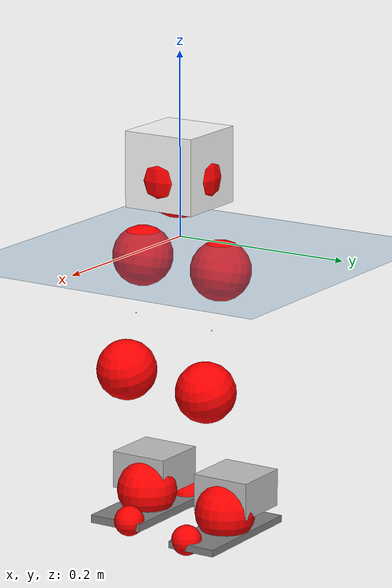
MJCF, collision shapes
<mujoco model="pi_12dof_release_v1">
  <compiler angle="radian" assetdir="assets" balanceinertia="true" inertiafromgeom="false"/>

  <option timestep="0.005" density="1.2" viscosity="2e-05"/>

  <size nkey="1"/>

  <visual>
    <quality shadowsize="8192"/>
    <map shadowclip="0.5"/>
  </visual>

  <default>
    <default class="/">
      <joint armature="0.01" damping="0.01" frictionloss="0.01"/>
      <geom contype="0" conaffinity="0" group="1" solref="-1000 -80"/>
      <site size="0.01 0.005 0.005" group="5"/>
      <general forcelimited="true" biastype="affine" gainprm="20" biasprm="0 -20 -0.5"/>
      <default class="foot">
        <geom size="0.0845 0.036 0.005" type="box" condim="6" group="4" priority="1" friction="0.9 0.2 0.2" solimp="0.015 1 0.005"/>
      </default>
      <default class="reward_collision_sphere">
        <geom group="5" rgba="1 0 0 1"/>
      </default>
    </default>
  </default>

  <asset>
    <texture type="skybox" colorspace="auto" name="//unnamed_texture_0" builtin="gradient" rgb1="0.95 0.95 0.95" rgb2="0.95 0.95 0.95" width="100" height="600"/>
    <texture type="2d" colorspace="auto" name="texplane" builtin="checker" rgb1="0.345 0.575 0.748" rgb2="0.345 0.575 0.748" markrgb="1 1 1" width="512" height="512"/>
    <material name="MatPlane" class="/" texture="texplane" texuniform="true" texrepeat="2 2" specular="0.9"/>
    <mesh name="baselink_1" class="/" file="baselink_1.STL"/>
    <mesh name="r_hip_pitch_link" class="/" file="r_hip_pitch_link.STL"/>
    <mesh name="r_hip_roll_link" class="/" file="r_hip_roll_link.STL"/>
    <mesh name="r_thigh_link" class="/" file="r_thigh_link.STL"/>
    <mesh name="r_calf_link" class="/" file="r_calf_link.STL"/>
    <mesh name="r_ankle_pitch_link" class="/" file="r_ankle_pitch_link.STL"/>
    <mesh name="r_ankle_roll_link" class="/" file="r_ankle_roll_link.STL"/>
    <mesh name="l_hip_pitch_link" class="/" file="l_hip_pitch_link.STL"/>
    <mesh name="l_hip_roll_link" class="/" file="l_hip_roll_link.STL"/>
    <mesh name="l_thigh_link" class="/" file="l_thigh_link.STL"/>
    <mesh name="l_calf_link" class="/" file="l_calf_link.STL"/>
    <mesh name="l_ankle_pitch_link" class="/" file="l_ankle_pitch_link.STL"/>
    <mesh name="l_ankle_roll_link" class="/" file="l_ankle_roll_link.STL"/>
  </asset>

  <worldbody>
    <geom name="floor" class="/" size="100 100 0.125" type="plane" group="0" material="MatPlane"/>
    <light name="toplight_shadow" class="/" pos="0 0 5" dir="0.0990148 0.0990148 -0.990148" type="directional" ambient="0.04 0.04 0.04" diffuse="0.55 0.55 0.55" specular="0.12 0.12 0.12"/>
    <light name="toplight_fill" class="/" pos="0 0 5" dir="0.0990148 0.0990148 -0.990148" type="directional" castshadow="false" ambient="0.04 0.04 0.04" diffuse="0.3 0.3 0.3" specular="0.08 0.08 0.08"/>
    <body name="trunk" pos="0.000886284 -0.000469638 0.00176063" quat="1 0.000399713 3.02249e-05 -0.000254925">
      <inertial pos="0.00395762 -0.000205663 0.0368436" quat="0.693279 0.00811989 0.0100072 0.720554" mass="1.15643" diaginertia="0.00419358 0.00137649 0.00275227"/>
      <joint name="//unnamed_joint_0" type="free"/>
      <geom name="//unnamed_geom_1" class="/" type="mesh" density="0" rgba="1 1 1 1" mesh="baselink_1"/>
      <geom name="//unnamed_geom_2" class="/" size="0.0412085 0.0412085 0.0412085" pos="0 0 0.0742142" type="box" rgba="1 1 1 1"/>
      <geom name="//unnamed_geom_3" class="reward_collision_sphere" size="0.0453293" pos="0 0 0.0649374"/>
      <site name="imu" class="/" pos="0.00900408 0.0108148 -0.00395263" size="0.00824169"/>
      <camera name="track" class="/" pos="0 -1.38833 0" quat="0.707107 0.707107 0 0" mode="trackcom"/>
      <camera name="ego_camera" class="/" pos="0.0638001 0 0.166982" quat="-0.5 -0.5 0.5 0.5"/>
      <body name="r_hip_pitch_link" pos="-0.00170508 -0.0123679 -0.0301863" quat="0.992191 8.22359e-07 -0.124725 -0.000107686">
        <inertial pos="0.0012891 -0.0386915 0.0013051" quat="-0.013758 0.709662 -0.0257624 0.703937" mass="0.200241" diaginertia="4.76943e-05 1.48767e-05 5.56715e-05"/>
        <joint name="r_hip_pitch_joint" class="/" pos="0 0 0" axis="-0.00722611 -0.999974 -7.37698e-05" range="-1.70169 1.19875" armature="0.00796436" damping="0.00772399" frictionloss="0.00883591"/>
        <geom name="//unnamed_geom_4" class="/" type="mesh" density="0" rgba="0.75294 0.75294 0.75294 1" mesh="r_hip_pitch_link"/>
        <geom name="//unnamed_geom_5" class="/" size="0.000412085 0.000412085 0.000412085" type="box" rgba="0.75294 0.75294 0.75294 1"/>
        <body name="r_hip_roll_link" pos="0.000690116 -0.0355914 0.000855761" quat="1 -0.000533438 0.000395713 0.000333864">
          <inertial pos="-0.00151224 -9.23116e-05 -0.0605025" quat="0.700903 -0.0773439 -0.0940369 0.702788" mass="0.223764" diaginertia="0.000152711 4.49987e-05 8.77728e-05"/>
          <joint name="r_hip_roll_joint" class="/" pos="0 0 0" axis="-0.999981 -0.00482459 -0.00381312" range="-0.113187 0.507816" armature="0.00910916" damping="0.000751852" frictionloss="0.00908228"/>
          <geom name="//unnamed_geom_6" class="/" type="mesh" density="0" rgba="0.75294 0.75294 0.75294 1" mesh="r_hip_roll_link"/>
          <geom name="//unnamed_geom_7" class="/" size="0.000412085 0.000412085 0.000412085" type="box" rgba="0.75294 0.75294 0.75294 1"/>
          <geom name="//unnamed_geom_8" class="reward_collision_sphere" size="0.0329668"/>
          <body name="r_thigh_link" pos="-0.00242573 -0.000583288 -0.0622617" quat="1 0.000302964 -0.000373642 -0.000860874">
            <inertial pos="0.0030852 0.0021001 -0.0426326" quat="0.736332 0.676615 -0.00252389 -0.000677279" mass="0.0631288" diaginertia="5.67384e-05 1.54813e-05 4.04587e-05"/>
            <joint name="r_thigh_joint" class="/" pos="0 0 0" axis="-0.000918635 0.00150521 -0.999998" stiffness="0.00471677" range="-0.353228 0.594165" armature="0.00904587" damping="0.0104057" frictionloss="0.0076108"/>
            <geom name="//unnamed_geom_9" class="/" type="mesh" density="0" rgba="0.75294 0.75294 0.75294 1" mesh="r_thigh_link"/>
            <geom name="//unnamed_geom_10" class="/" size="0.000412085 0.000412085 0.000412085" type="box" rgba="0.75294 0.75294 0.75294 1"/>
            <body name="r_calf_link" pos="-0.00169865 -0.00300632 -0.0621836" quat="0.947871 0.000787672 0.318652 9.20914e-06">
              <inertial pos="-0.00350136 -0.000466007 -0.0653046" quat="0.999905 -0.00977309 -0.0065042 0.00718244" mass="0.429903" diaginertia="0.00154798 0.000552024 0.000117604"/>
              <joint name="r_calf_joint" class="/" pos="0 0 0" axis="0.0056432 -0.999878 0.0145435" range="-1.6401 0.695661" armature="0.00812955" damping="3.61462e-05" frictionloss="0.00832138"/>
              <geom name="//unnamed_geom_11" class="/" type="mesh" density="0" rgba="0.75294 0.75294 0.75294 1" mesh="r_calf_link"/>
              <geom name="//unnamed_geom_12" class="/" size="0.000412085 0.000412085 0.000412085" type="box" rgba="0.75294 0.75294 0.75294 1"/>
              <geom name="//unnamed_geom_13" class="reward_collision_sphere" size="0.0329668"/>
              <body name="r_ankle_pitch_link" pos="-0.00144028 -0.00135327 -0.135303" quat="0.979998 -0.00090905 -0.199005 -0.000991041">
                <inertial pos="0.00132734 0.00205731 -0.00314826" quat="-0.00569839 0.703003 0.00562476 0.711141" mass="0.0990118" diaginertia="0.000134966 3.53074e-05 8.45688e-05"/>
                <joint name="r_ankle_pitch_joint" class="/" pos="0 0 0" axis="0.00642459 -0.99996 0.00623753" stiffness="0.00235782" range="-1.34563 0.50753" armature="0.00708274" damping="0" frictionloss="0.00880976"/>
                <geom name="//unnamed_geom_14" class="/" type="mesh" density="0" rgba="0.75294 0.75294 0.75294 1" mesh="r_ankle_pitch_link"/>
                <geom name="//unnamed_geom_15" class="/" size="0.0321426 0.0329668 0.0206042" type="box" rgba="0.75294 0.75294 0.75294 1"/>
                <body name="r_ankle_roll_link" pos="0.0660781 0.00619815 0.000382441" quat="0.999999 0.000594308 0.000530923 0.00064436">
                  <inertial pos="-0.0237293 0.00083388 -0.0130347" quat="0.563799 0.432438 0.423589 0.561873" mass="0.288082" diaginertia="0.000511034 0.000167415 0.000191891"/>
                  <joint name="r_ankle_roll_joint" class="/" pos="0 0 0" axis="-0.999997 -0.000658036 -0.00237794" stiffness="0.0089332" range="-0.100889 0.195217" armature="0.00826704" damping="0" frictionloss="0.00867218"/>
                  <geom name="//unnamed_geom_16" class="/" type="mesh" density="0" rgba="0.75294 0.75294 0.75294 1" mesh="r_ankle_roll_link"/>
                  <geom name="//unnamed_geom_17" class="/" type="mesh" rgba="0.75294 0.75294 0.75294 1" mesh="r_ankle_roll_link"/>
                  <geom name="right_foot" class="foot" size="0.0632488 0.0312258 0.0043344" pos="-0.0433841 0 -0.0408178"/>
                  <geom name="//unnamed_geom_19" class="reward_collision_sphere" size="0.0329668" pos="-0.0425334 0 -0.0185535"/>
                  <geom name="//unnamed_geom_20" class="reward_collision_sphere" size="0.0164834" pos="0.01276 0.0138833 -0.0371071"/>
                  <geom name="//unnamed_geom_21" class="reward_collision_sphere" size="0.0164834" pos="-0.10208 0.0138833 -0.0371071"/>
                  <site name="right_foot" class="foot" pos="-0.0433841 0 -0.0408178" size="0.00824169"/>
                </body>
              </body>
            </body>
          </body>
        </body>
      </body>
      <body name="l_hip_pitch_link" pos="-0.000280054 0.0146701 -0.0300069" quat="0.992163 -0.00109891 -0.124945 0.000225035">
        <inertial pos="-0.00237099 0.0381735 0.00188631" quat="-0.0376824 0.714044 0.0226869 0.698717" mass="0.210652" diaginertia="5.38211e-05 1.70394e-05 6.65613e-05"/>
        <joint name="l_hip_pitch_joint" class="/" pos="0 0 0" axis="-9.76278e-05 1 0.000425669" range="-1.21396 1.70427" armature="0.00819014" damping="0.000529351" frictionloss="0.00923624"/>
        <geom name="//unnamed_geom_22" class="/" type="mesh" density="0" rgba="0.75294 0.75294 0.75294 1" mesh="l_hip_pitch_link"/>
        <geom name="//unnamed_geom_23" class="/" size="0.000412085 0.000412085 0.000412085" type="box" rgba="0.75294 0.75294 0.75294 1"/>
        <body name="l_hip_roll_link" pos="0.00257392 0.0390224 -0.00184873" quat="1 -0.0003811 -0.00029906 -7.94752e-05">
          <inertial pos="-0.00377495 -0.00114997 -0.0543356" quat="0.698977 -0.0754452 -0.0772835 0.706942" mass="0.211382" diaginertia="0.000141495 4.38134e-05 8.68334e-05"/>
          <joint name="l_hip_roll_joint" class="/" pos="0 0 0" axis="-1 0.000136128 -0.000215792" range="-0.496443 0.069385" armature="0.0077797" damping="0.0129026" frictionloss="0.00817749"/>
          <geom name="//unnamed_geom_24" class="/" type="mesh" density="0" rgba="0.75294 0.75294 0.75294 1" mesh="l_hip_roll_link"/>
          <geom name="//unnamed_geom_25" class="/" size="0.000412085 0.000412085 0.000412085" type="box" rgba="0.75294 0.75294 0.75294 1"/>
          <geom name="//unnamed_geom_26" class="reward_collision_sphere" size="0.0329668"/>
          <body name="l_thigh_link" pos="-0.00182345 -0.00204499 -0.0644693" quat="1 0.000309481 3.08214e-05 0.000175033">
            <inertial pos="0.00183238 0.0003875 -0.0422947" quat="0.675092 0.737728 -0.00206305 -0.00213723" mass="0.0616151" diaginertia="5.50012e-05 1.4537e-05 4.04388e-05"/>
            <joint name="l_thigh_joint" class="/" pos="0 0 0" axis="0.000217405 -4.30354e-05 -1" range="-0.585148 0.268529" armature="0.0073478" damping="0" frictionloss="0.00738228"/>
            <geom name="//unnamed_geom_27" class="/" type="mesh" density="0" rgba="0.75294 0.75294 0.75294 1" mesh="l_thigh_link"/>
            <geom name="//unnamed_geom_28" class="/" size="0.000412085 0.000412085 0.000412085" type="box" rgba="0.75294 0.75294 0.75294 1"/>
            <body name="l_calf_link" pos="-0.00361696 0.000868903 -0.0660703" quat="0.947632 -0.000237369 0.319365 0.000556803">
              <inertial pos="-0.000521879 -7.07077e-05 -0.0633577" quat="0.999998 0.00125722 -0.000847131 0.00157111" mass="0.460998" diaginertia="0.0015111 0.000545062 0.000120787"/>
              <joint name="l_calf_joint" class="/" pos="0 0 0" axis="-0.00508842 0.99991 0.0124387" range="-0.64753 1.63569" armature="0.00911663" damping="0" frictionloss="0.00898737"/>
              <geom name="//unnamed_geom_29" class="/" type="mesh" density="0" rgba="0.75294 0.75294 0.75294 1" mesh="l_calf_link"/>
              <geom name="//unnamed_geom_30" class="/" size="0.000412085 0.000412085 0.000412085" type="box" rgba="0.75294 0.75294 0.75294 1"/>
              <geom name="//unnamed_geom_31" class="reward_collision_sphere" size="0.0329668"/>
              <body name="l_ankle_pitch_link" pos="-0.00276476 0.00345726 -0.134108" quat="0.98013 0.000293005 -0.198357 -0.000549781">
                <inertial pos="0.00706767 -0.00323264 0.000441549" quat="0.00129402 0.710067 -0.00433928 0.70412" mass="0.0979274" diaginertia="0.000132531 3.49291e-05 8.18085e-05"/>
                <joint name="l_ankle_pitch_joint" class="/" pos="0 0 0" axis="-0.000879074 0.999999 0.000493246" range="-0.542935 1.29972" armature="0.00702018" damping="0.0199604" frictionloss="0.00795232"/>
                <geom name="//unnamed_geom_32" class="/" type="mesh" density="0" rgba="0.75294 0.75294 0.75294 1" mesh="l_ankle_pitch_link"/>
                <geom name="//unnamed_geom_33" class="/" size="0.0321426 0.0329668 0.0206042" type="box" rgba="0.75294 0.75294 0.75294 1"/>
                <body name="l_ankle_roll_link" pos="0.0648939 0.00105753 -0.000383191" quat="0.999999 -0.000527969 0.000139374 0.00127313">
                  <inertial pos="-0.0195374 -0.00084115 -0.0123074" quat="0.560153 0.433455 0.431919 0.558383" mass="0.29094" diaginertia="0.000507666 0.000175617 0.000202079"/>
                  <joint name="l_ankle_roll_joint" class="/" pos="0 0 0" axis="-0.999999 -0.000999256 -0.000778974" range="-0.131591 0.204824" armature="0.00843081" damping="0" frictionloss="0.00719142"/>
                  <geom name="//unnamed_geom_34" class="/" type="mesh" density="0" rgba="0.75294 0.75294 0.75294 1" mesh="l_ankle_roll_link"/>
                  <geom name="//unnamed_geom_35" class="/" type="mesh" rgba="0.75294 0.75294 0.75294 1" mesh="l_ankle_roll_link"/>
                  <geom name="left_foot" class="foot" size="0.0694636 0.0278852 0.00388853" pos="-0.0433841 0 -0.0408178"/>
                  <geom name="//unnamed_geom_37" class="reward_collision_sphere" size="0.0329668" pos="-0.0425334 0 -0.0185535"/>
                  <geom name="//unnamed_geom_38" class="reward_collision_sphere" size="0.0164834" pos="0.01276 -0.0138833 -0.0371071"/>
                  <geom name="//unnamed_geom_39" class="reward_collision_sphere" size="0.0164834" pos="-0.10208 -0.0138833 -0.0371071"/>
                  <site name="left_foot" class="foot" pos="-0.0433841 0 -0.0408178" size="0.00824169"/>
                </body>
              </body>
            </body>
          </body>
        </body>
      </body>
    </body>
  </worldbody>

  <contact>
    <pair class="/" geom1="floor" geom2="right_foot" name="//unnamed_contact_1"/>
    <pair class="/" geom1="floor" geom2="left_foot" name="//unnamed_contact_0"/>
  </contact>

  <actuator>
    <general name="r_hip_pitch_joint" class="/" joint="r_hip_pitch_joint" forcerange="-17.2867 17.2867" gainprm="17.5991" biasprm="0 -17.5991 -0.420828"/>
    <general name="r_hip_roll_joint" class="/" joint="r_hip_roll_joint" forcerange="-18.7955 18.7955" gainprm="17.5991" biasprm="0 -17.5991 -0.420828"/>
    <general name="r_thigh_joint" class="/" joint="r_thigh_joint" forcerange="-17.6244 17.6244" gainprm="17.5991" biasprm="0 -17.5991 -0.420828"/>
    <general name="r_calf_joint" class="/" joint="r_calf_joint" forcerange="-15.5704 15.5704" gainprm="17.5991" biasprm="0 -17.5991 -0.420828"/>
    <general name="r_ankle_pitch_joint" class="/" joint="r_ankle_pitch_joint" forcerange="-15.5267 15.5267" gainprm="17.5991" biasprm="0 -17.5991 -0.420828"/>
    <general name="r_ankle_roll_joint" class="/" joint="r_ankle_roll_joint" forcerange="-18.7003 18.7003" gainprm="17.5991" biasprm="0 -17.5991 -0.420828"/>
    <general name="l_hip_pitch_joint" class="/" joint="l_hip_pitch_joint" forcerange="-17.742 17.742" gainprm="17.5991" biasprm="0 -17.5991 -0.420828"/>
    <general name="l_hip_roll_joint" class="/" joint="l_hip_roll_joint" forcerange="-18.4141 18.4141" gainprm="17.5991" biasprm="0 -17.5991 -0.420828"/>
    <general name="l_thigh_joint" class="/" joint="l_thigh_joint" forcerange="-18.7539 18.7539" gainprm="17.5991" biasprm="0 -17.5991 -0.420828"/>
    <general name="l_calf_joint" class="/" joint="l_calf_joint" forcerange="-16.3846 16.3846" gainprm="17.5991" biasprm="0 -17.5991 -0.420828"/>
    <general name="l_ankle_pitch_joint" class="/" joint="l_ankle_pitch_joint" forcerange="-18.801 18.801" gainprm="17.5991" biasprm="0 -17.5991 -0.420828"/>
    <general name="l_ankle_roll_joint" class="/" joint="l_ankle_roll_joint" forcerange="-17.8567 17.8567" gainprm="17.5991" biasprm="0 -17.5991 -0.420828"/>
  </actuator>

  <sensor>
    <gyro site="imu" name="imu_angular_velocity"/>
    <velocimeter site="imu" name="imu_linear_velocity"/>
    <framelinvel objtype="site" objname="left_foot" name="left_foot_global_linear_velocity"/>
    <framelinvel objtype="site" objname="right_foot" name="right_foot_global_linear_velocity"/>
  </sensor>

  <keyframe>
    <key name="home" qpos="0 0 0.291 1 0 0 0 0.4 0 0 -0.8 0.4 0 -0.4 0 0 0.8 -0.4 0"/>
  </keyframe>
</mujoco>
